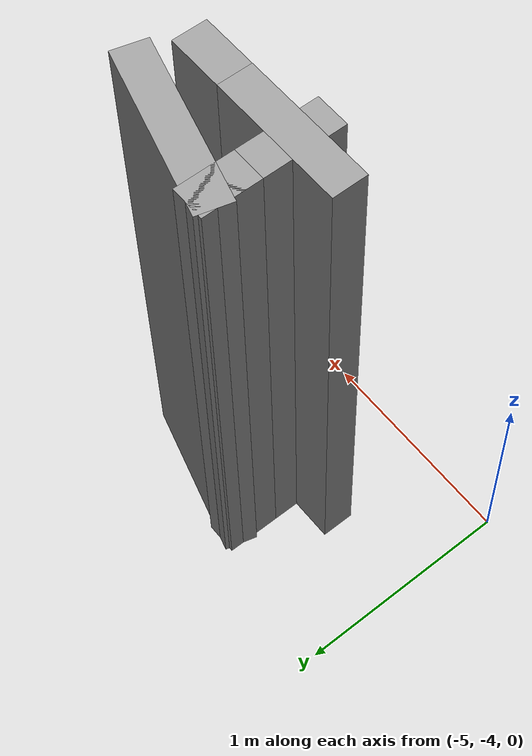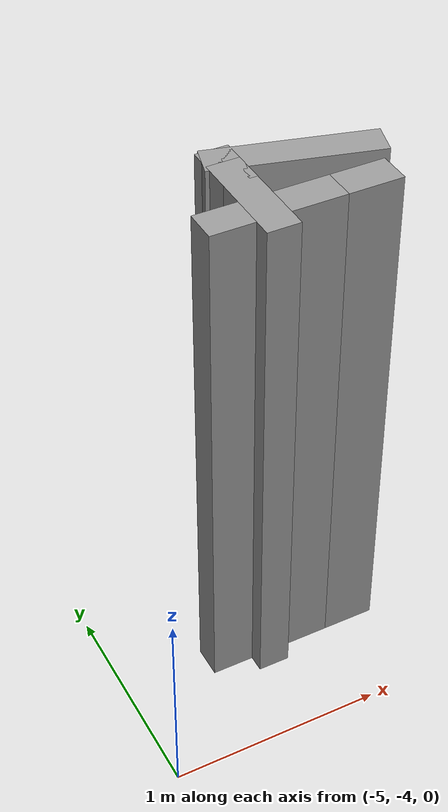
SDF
<?xml version='1.0'?>
<sdf version='1.6'>
  <model name='so4'>
    <pose frame=''>-4.11179 -3.31657 0 0 -0 0</pose>
    <link name='Wall_18'>
      <collision name='Wall_18_Collision'>
        <geometry>
          <box>
            <size>0.75 0.15 2.5</size>
          </box>
        </geometry>
        <pose frame=''>0 0 1.25 0 -0 0</pose>
      </collision>
      <visual name='Wall_18_Visual'>
        <pose frame=''>0 0 1.25 0 -0 0</pose>
        <geometry>
          <box>
            <size>0.75 0.15 2.5</size>
          </box>
        </geometry>
        <material>
          <script>
            <uri>file://media/materials/scripts/gazebo.material</uri>
            <name>Gazebo/Grey</name>
          </script>
          <ambient>1 1 1 1</ambient>
        </material>
        <meta>
          <layer>0</layer>
        </meta>
      </visual>
      <pose frame=''>-0.098206 -0.153428 0 0 -0 0</pose>
    </link>
    <link name='Wall_19'>
      <collision name='Wall_19_Collision'>
        <geometry>
          <box>
            <size>0.25 0.15 2.5</size>
          </box>
        </geometry>
        <pose frame=''>0 0 1.25 0 -0 0</pose>
      </collision>
      <visual name='Wall_19_Visual'>
        <pose frame=''>0 0 1.25 0 -0 0</pose>
        <geometry>
          <box>
            <size>0.25 0.15 2.5</size>
          </box>
        </geometry>
        <material>
          <script>
            <uri>file://media/materials/scripts/gazebo.material</uri>
            <name>Gazebo/Grey</name>
          </script>
          <ambient>1 1 1 1</ambient>
        </material>
        <meta>
          <layer>0</layer>
        </meta>
      </visual>
      <pose frame=''>0.251794 -0.153428 0 0 -0 0</pose>
    </link>
    <link name='Wall_28'>
      <collision name='Wall_28_Collision'>
        <geometry>
          <box>
            <size>0.5 0.15 2.5</size>
          </box>
        </geometry>
        <pose frame=''>0 0 1.25 0 -0 0</pose>
      </collision>
      <visual name='Wall_28_Visual'>
        <pose frame=''>0 0 1.25 0 -0 0</pose>
        <geometry>
          <box>
            <size>0.5 0.15 2.5</size>
          </box>
        </geometry>
        <material>
          <script>
            <uri>file://media/materials/scripts/gazebo.material</uri>
            <name>Gazebo/Grey</name>
          </script>
          <ambient>1 1 1 1</ambient>
        </material>
        <meta>
          <layer>0</layer>
        </meta>
      </visual>
      <pose frame=''>-0.198206 -0.058428 0 0 -0 -1.5708</pose>
    </link>
    <link name='Wall_32'>
      <collision name='Wall_32_Collision'>
        <geometry>
          <box>
            <size>0.15 0.15 2.5</size>
          </box>
        </geometry>
        <pose frame=''>0 0 1.25 0 -0 0</pose>
      </collision>
      <visual name='Wall_32_Visual'>
        <pose frame=''>0 0 1.25 0 -0 0</pose>
        <geometry>
          <box>
            <size>0.15 0.15 2.5</size>
          </box>
        </geometry>
        <material>
          <script>
            <uri>file://media/materials/scripts/gazebo.material</uri>
            <name>Gazebo/Grey</name>
          </script>
          <ambient>1 1 1 1</ambient>
        </material>
        <meta>
          <layer>0</layer>
        </meta>
      </visual>
      <pose frame=''>-0.198206 0.116572 0 0 -0 0</pose>
    </link>
    <link name='Wall_33'>
      <collision name='Wall_33_Collision'>
        <geometry>
          <box>
            <size>0.15 0.15 2.5</size>
          </box>
        </geometry>
        <pose frame=''>0 0 1.25 0 -0 0</pose>
      </collision>
      <visual name='Wall_33_Visual'>
        <pose frame=''>0 0 1.25 0 -0 0</pose>
        <geometry>
          <box>
            <size>0.15 0.15 2.5</size>
          </box>
        </geometry>
        <material>
          <script>
            <uri>file://media/materials/scripts/gazebo.material</uri>
            <name>Gazebo/Grey</name>
          </script>
          <ambient>1 1 1 1</ambient>
        </material>
        <meta>
          <layer>0</layer>
        </meta>
      </visual>
      <pose frame=''>-0.198206 0.116572 0 0 -0 0</pose>
    </link>
    <link name='Wall_34'>
      <collision name='Wall_34_Collision'>
        <geometry>
          <box>
            <size>0.25 0.15 2.5</size>
          </box>
        </geometry>
        <pose frame=''>0 0 1.25 0 -0 0</pose>
      </collision>
      <visual name='Wall_34_Visual'>
        <pose frame=''>0 0 1.25 0 -0 0</pose>
        <geometry>
          <box>
            <size>0.25 0.15 2.5</size>
          </box>
        </geometry>
        <material>
          <script>
            <uri>file://media/materials/scripts/gazebo.material</uri>
            <name>Gazebo/Grey</name>
          </script>
          <ambient>1 1 1 1</ambient>
        </material>
        <meta>
          <layer>0</layer>
        </meta>
      </visual>
      <pose frame=''>-0.198206 0.166572 0 0 -0 1.5708</pose>
    </link>
    <link name='Wall_35'>
      <collision name='Wall_35_Collision'>
        <geometry>
          <box>
            <size>0.75 0.15 2.5</size>
          </box>
        </geometry>
        <pose frame=''>0 0 1.25 0 -0 0</pose>
      </collision>
      <visual name='Wall_35_Visual'>
        <pose frame=''>0 0 1.25 0 -0 0</pose>
        <geometry>
          <box>
            <size>0.75 0.15 2.5</size>
          </box>
        </geometry>
        <material>
          <script>
            <uri>file://media/materials/scripts/gazebo.material</uri>
            <name>Gazebo/Grey</name>
          </script>
          <ambient>1 1 1 1</ambient>
        </material>
        <meta>
          <layer>0</layer>
        </meta>
      </visual>
      <pose frame=''>0.091572 0.138926 0 0 -0 -0.261799</pose>
    </link>
    <static>1</static>
  </model>
</sdf>
